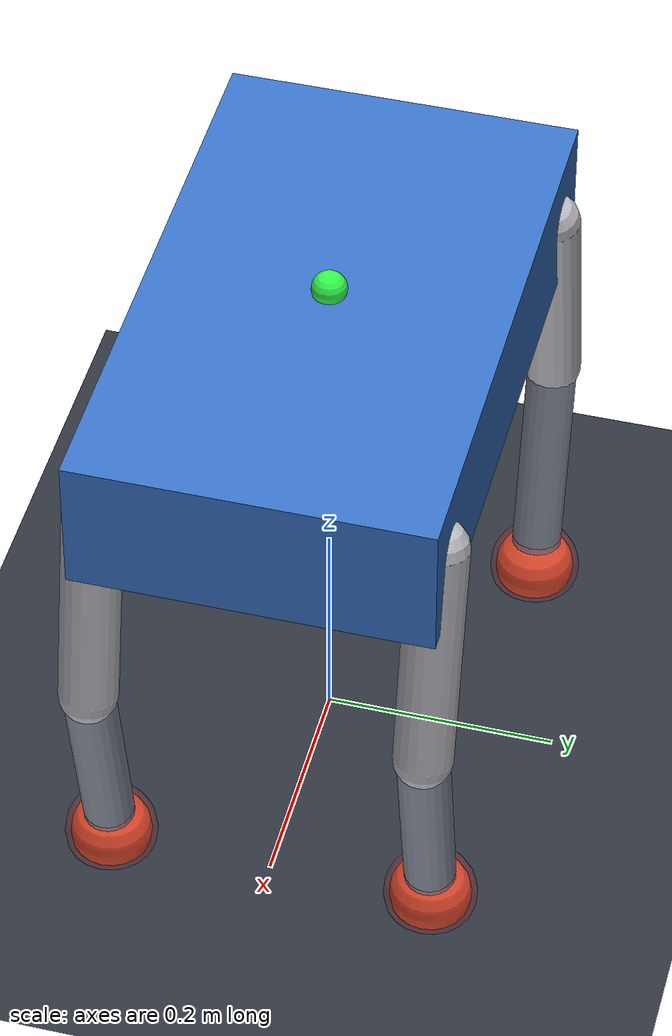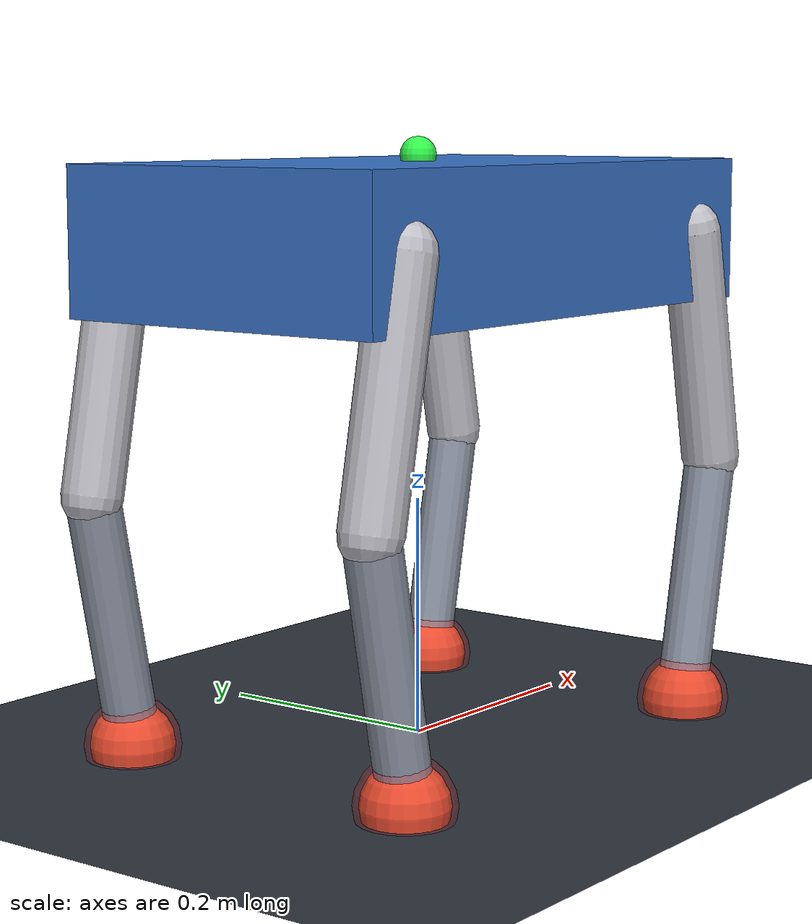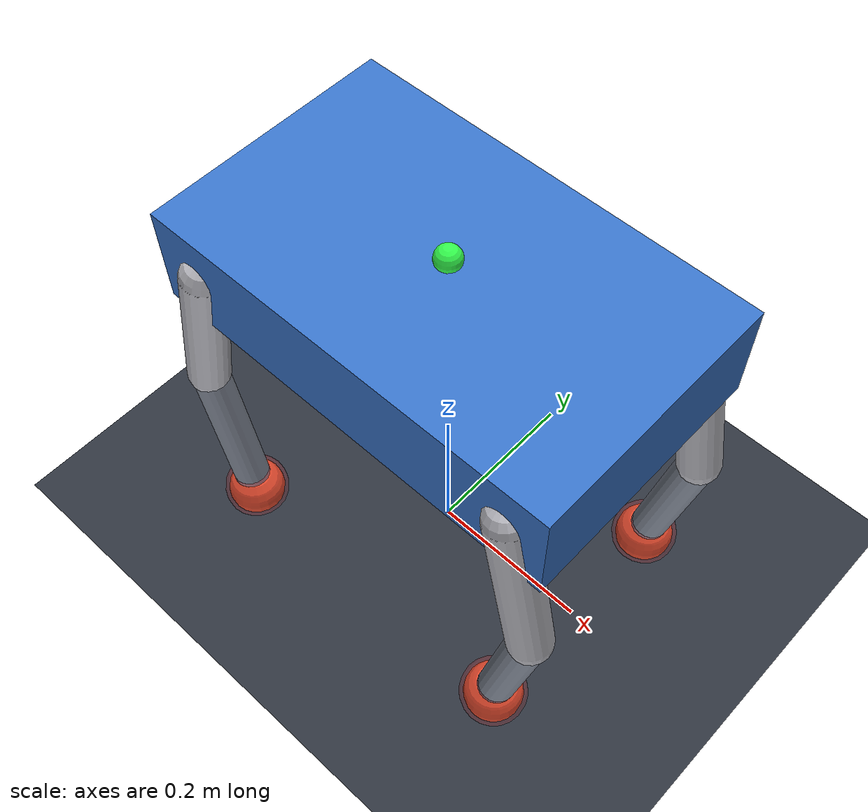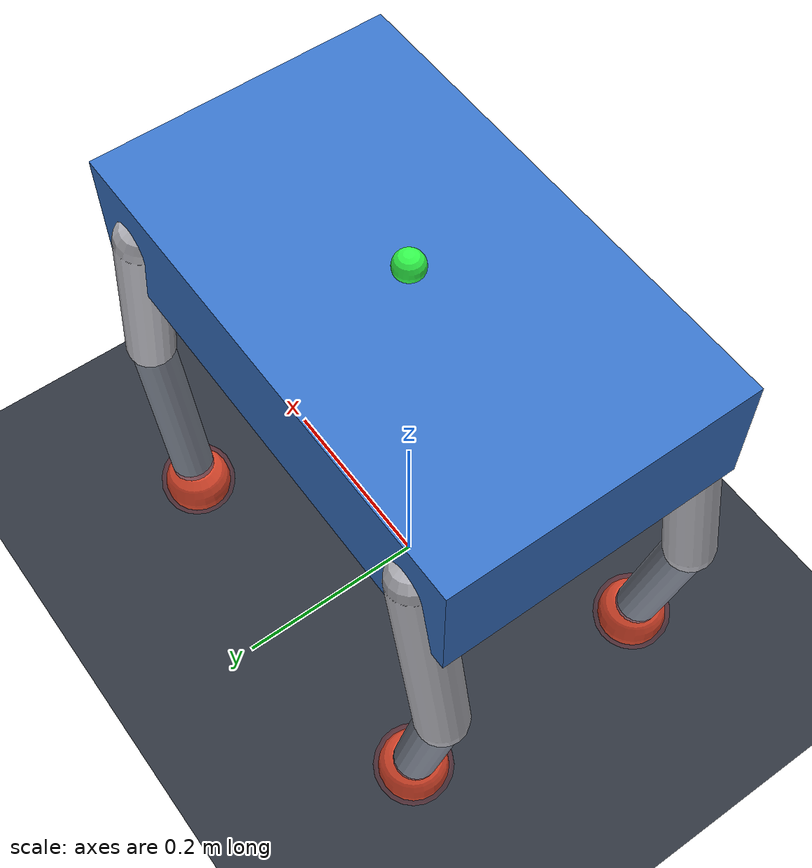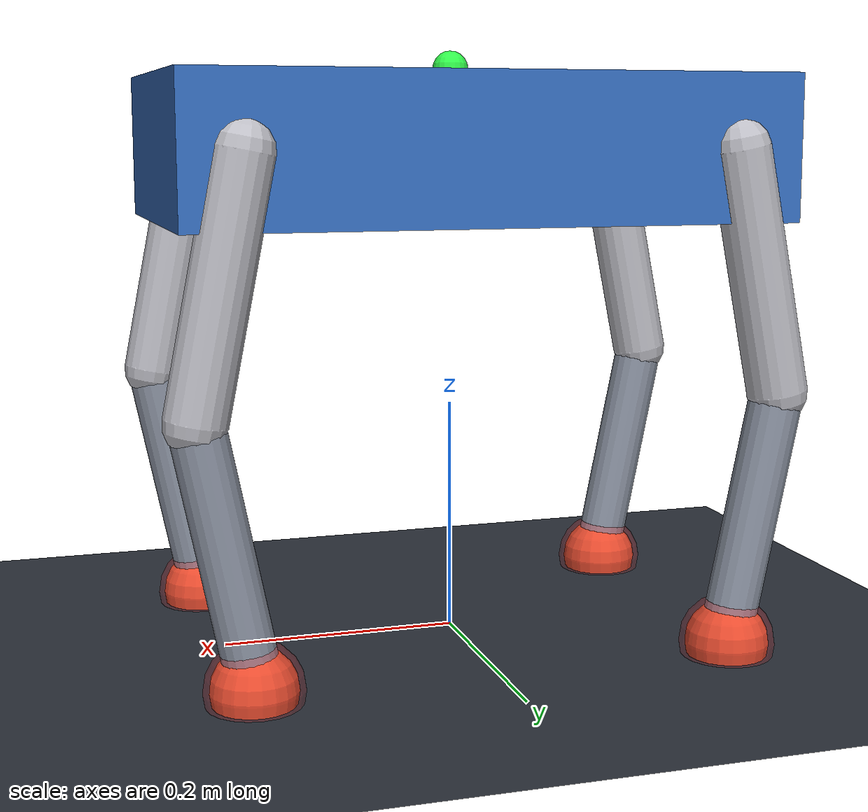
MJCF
<mujoco model="mujica-quadruped">
  <compiler angle="radian" autolimits="true"/>
  <option timestep="0.002" gravity="0 0 -9.81" integrator="RK4"/>
  <default>
    <joint damping="0.35" armature="0.015" limited="true"/>
    <geom friction="0.9 0.02 0.002" condim="3" solref="0.015 1"/>
    <motor ctrllimited="true" ctrlrange="-6 6"/>
  </default>
  <worldbody>
    <light pos="0 -1 3" dir="0 0 -1"/>
    <geom name="floor" type="plane" size="4 4 0.1" rgba="0.18 0.2 0.24 1"/>
    <body name="torso" pos="0 0 0.42">
      <freejoint name="root"/>
      <geom name="torso-geom" type="box" size="0.25 0.15 0.06" mass="4" rgba="0.22 0.45 0.78 1"/>
      <site name="imu-site" pos="0 0 0.065" size="0.015" rgba="0.2 1 0.3 1"/>
      <site name="foot-array-site" pos="0 0 0" size="0.005" rgba="0 0 0 0"/>

      <body name="leg-fl-upper" pos="0.20 0.14 0">
        <joint name="hip-fl" axis="0 1 0" range="-1.2 1.2"/>
        <geom type="capsule" fromto="0 0 0 0.04 0 -0.20" size="0.025" mass="0.18" rgba="0.75 0.75 0.78 1"/>
        <body name="leg-fl-lower" pos="0.04 0 -0.20">
          <joint name="knee-fl" axis="0 1 0" range="-2.2 0.1"/>
          <geom type="capsule" fromto="0 0 0 -0.04 0 -0.20" size="0.022" mass="0.16" rgba="0.55 0.58 0.64 1"/>
          <geom name="foot-fl" type="sphere" pos="-0.04 0 -0.21" size="0.035" mass="0.06" rgba="0.9 0.35 0.2 1"/>
          <site name="foot-fl-site" pos="-0.04 0 -0.21" size="0.04" rgba="1 0.2 0.2 0.25"/>
        </body>
      </body>
      <body name="leg-fr-upper" pos="0.20 -0.14 0">
        <joint name="hip-fr" axis="0 1 0" range="-1.2 1.2"/>
        <geom type="capsule" fromto="0 0 0 0.04 0 -0.20" size="0.025" mass="0.18" rgba="0.75 0.75 0.78 1"/>
        <body name="leg-fr-lower" pos="0.04 0 -0.20">
          <joint name="knee-fr" axis="0 1 0" range="-2.2 0.1"/>
          <geom type="capsule" fromto="0 0 0 -0.04 0 -0.20" size="0.022" mass="0.16" rgba="0.55 0.58 0.64 1"/>
          <geom name="foot-fr" type="sphere" pos="-0.04 0 -0.21" size="0.035" mass="0.06" rgba="0.9 0.35 0.2 1"/>
          <site name="foot-fr-site" pos="-0.04 0 -0.21" size="0.04" rgba="1 0.2 0.2 0.25"/>
        </body>
      </body>
      <body name="leg-rl-upper" pos="-0.20 0.14 0">
        <joint name="hip-rl" axis="0 1 0" range="-1.2 1.2"/>
        <geom type="capsule" fromto="0 0 0 -0.04 0 -0.20" size="0.025" mass="0.18" rgba="0.75 0.75 0.78 1"/>
        <body name="leg-rl-lower" pos="-0.04 0 -0.20">
          <joint name="knee-rl" axis="0 1 0" range="-2.2 0.1"/>
          <geom type="capsule" fromto="0 0 0 0.04 0 -0.20" size="0.022" mass="0.16" rgba="0.55 0.58 0.64 1"/>
          <geom name="foot-rl" type="sphere" pos="0.04 0 -0.21" size="0.035" mass="0.06" rgba="0.9 0.35 0.2 1"/>
          <site name="foot-rl-site" pos="0.04 0 -0.21" size="0.04" rgba="1 0.2 0.2 0.25"/>
        </body>
      </body>
      <body name="leg-rr-upper" pos="-0.20 -0.14 0">
        <joint name="hip-rr" axis="0 1 0" range="-1.2 1.2"/>
        <geom type="capsule" fromto="0 0 0 -0.04 0 -0.20" size="0.025" mass="0.18" rgba="0.75 0.75 0.78 1"/>
        <body name="leg-rr-lower" pos="-0.04 0 -0.20">
          <joint name="knee-rr" axis="0 1 0" range="-2.2 0.1"/>
          <geom type="capsule" fromto="0 0 0 0.04 0 -0.20" size="0.022" mass="0.16" rgba="0.55 0.58 0.64 1"/>
          <geom name="foot-rr" type="sphere" pos="0.04 0 -0.21" size="0.035" mass="0.06" rgba="0.9 0.35 0.2 1"/>
          <site name="foot-rr-site" pos="0.04 0 -0.21" size="0.04" rgba="1 0.2 0.2 0.25"/>
        </body>
      </body>
    </body>
  </worldbody>
  <sensor>
  <gyro name="body-gyro" site="imu-site"/>
  <accelerometer name="body-accelerometer" site="imu-site"/>
</sensor>

<sensor>
  <touch name="foot-force-fl" site="foot-fl-site"/>
  <touch name="foot-force-fr" site="foot-fr-site"/>
  <touch name="foot-force-rl" site="foot-rl-site"/>
  <touch name="foot-force-rr" site="foot-rr-site"/>
</sensor>

  <actuator>
    <motor name="hip-fl-motor" joint="hip-fl"/><motor name="knee-fl-motor" joint="knee-fl"/>
    <motor name="hip-fr-motor" joint="hip-fr"/><motor name="knee-fr-motor" joint="knee-fr"/>
    <motor name="hip-rl-motor" joint="hip-rl"/><motor name="knee-rl-motor" joint="knee-rl"/>
    <motor name="hip-rr-motor" joint="hip-rr"/><motor name="knee-rr-motor" joint="knee-rr"/>
  </actuator>
  <keyframe>
    <key name="home" qpos="0 0 0.42 1 0 0 0 0.15 -0.75 0.15 -0.75 0.15 -0.75 0.15 -0.75"/>
  </keyframe>
</mujoco>
